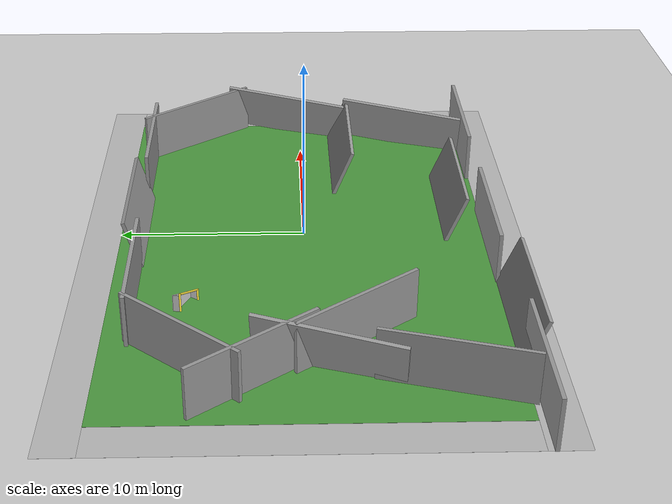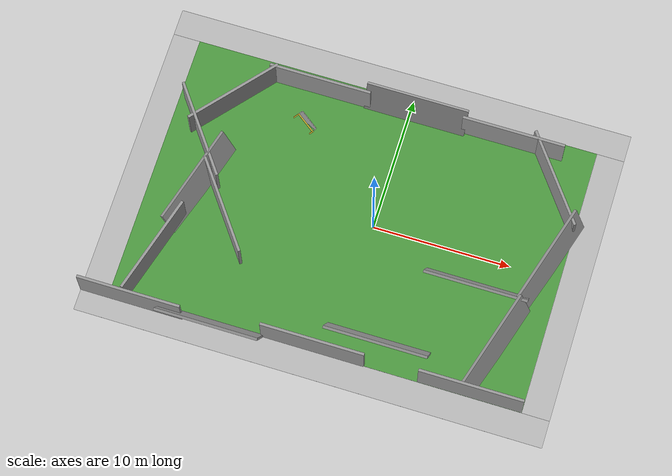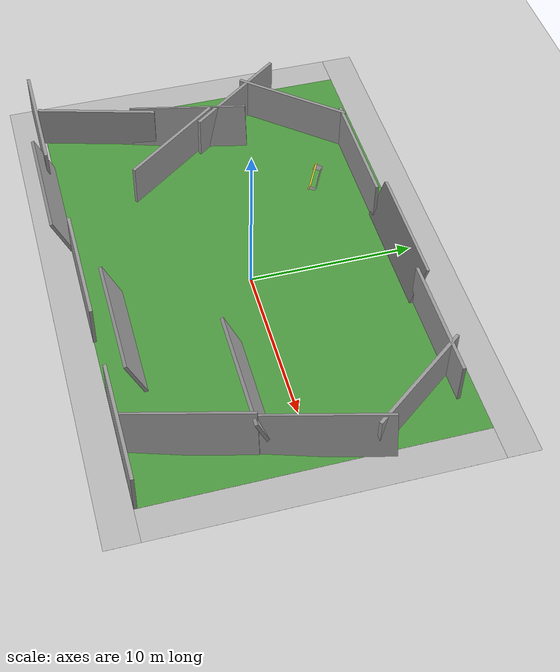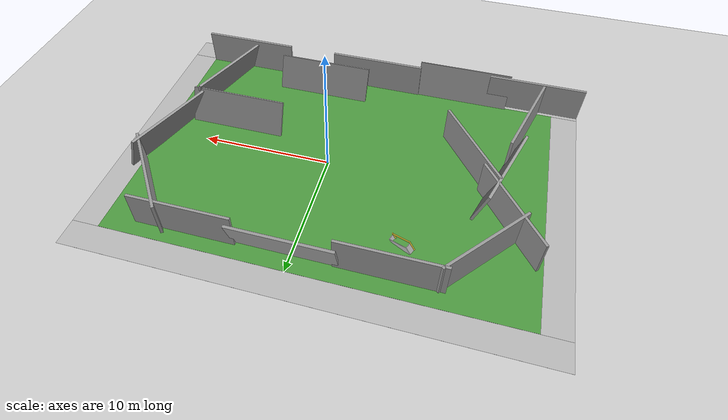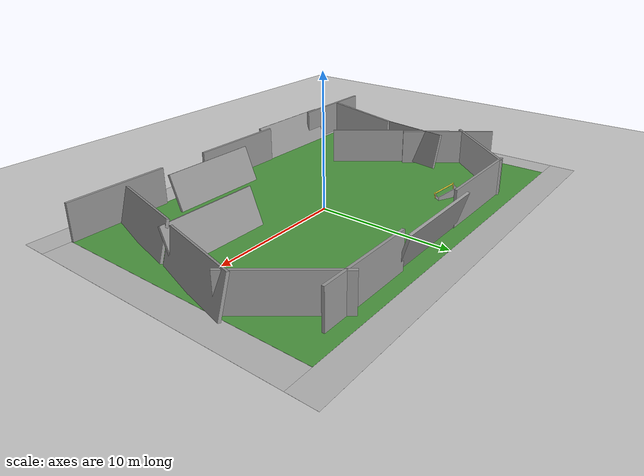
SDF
<sdf version="1.6">
 <world name="default">
  <light name="sun" type="directional">
   <pose>0 0 10 0 -0 0</pose>
   <diffuse>0.8 0.8 0.8 1</diffuse>
   <specular>0.1 0.1 0.1 1</specular>
   <attenuation>
    <range>1000</range>
    <constant>0.9</constant>
    <linear>0.01</linear>
    <quadratic>0.001</quadratic>
   </attenuation>
   <direction>-0.5 0.5 -1</direction>
  </light>
  <model name="ground_plane">
   <static>1</static>
   <link name="link">
    <collision name="collision">
     <geometry><plane><normal>0 0 1</normal><size>100 100</size></plane></geometry>
     <surface><friction><ode><mu>100</mu><mu2>50</mu2></ode></friction></surface>
    </collision>
    <visual name="visual">
     <cast_shadows>0</cast_shadows>
     <geometry><plane><normal>0 0 1</normal><size>100 100</size></plane></geometry>
     <material>
      <script><uri>file://media/materials/scripts/gazebo.material</uri><name>Gazebo/Grey</name></script>
     </material>
    </visual>
   </link>
  </model>
  <gravity>0 0 -9.8</gravity>
  <magnetic_field>6e-06 2.3e-05 -4.2e-05</magnetic_field>
  <atmosphere type="adiabatic"/>
  <physics name="default_physics" default="0" type="ode">
   <max_step_size>0.001</max_step_size>
   <real_time_factor>1</real_time_factor>
   <real_time_update_rate>1000</real_time_update_rate>
  </physics>
  <scene><ambient>0.4 0.4 0.4 1</ambient><background>0.7 0.7 0.7 1</background><shadows>1</shadows></scene>
  <spherical_coordinates>
   <surface_model>EARTH_WGS84</surface_model>
   <latitude_deg>0</latitude_deg>
   <longitude_deg>0</longitude_deg>
   <elevation>0</elevation>
   <heading_deg>0</heading_deg>
  </spherical_coordinates>
  <model name="robocup_3d_field">
   <static>1</static>
   <link name="field">
    <pose>0 0 0.01 0 -0 0</pose>
    <collision name="collision">
     <geometry><plane><normal>0 0 1</normal><size>30 20</size></plane></geometry>
     <surface><friction><ode><mu>100</mu><mu2>50</mu2></ode></friction></surface>
    </collision>
    <visual name="base1">
     <pose>0 11 0.001 0 -0 0</pose>
     <cast_shadows>0</cast_shadows>
     <geometry><plane><normal>0 0 1</normal><size>34 2</size></plane></geometry>
     <material>
      <script>
       <uri>model://robocup_3Dsim_field/materials/scripts/</uri>
       <uri>model://robocup_3Dsim_field/materials/textures/</uri>
       <name>RoboCup/FieldBorder</name>
      </script>
     </material>
    </visual>
    <visual name="base2">
     <pose>0 -11 0.001 0 -0 0</pose>
     <cast_shadows>0</cast_shadows>
     <geometry><plane><normal>0 0 1</normal><size>34 2</size></plane></geometry>
     <material>
      <script>
       <uri>model://robocup_3Dsim_field/materials/scripts/</uri>
       <uri>model://robocup_3Dsim_field/materials/textures/</uri>
       <name>RoboCup/FieldBorder</name>
      </script>
     </material>
    </visual>
    <visual name="base3">
     <pose>16 0 0.001 0 -0 0</pose>
     <cast_shadows>0</cast_shadows>
     <geometry><plane><normal>0 0 1</normal><size>2 20</size></plane></geometry>
     <material>
      <script>
       <uri>model://robocup_3Dsim_field/materials/scripts/</uri>
       <uri>model://robocup_3Dsim_field/materials/textures/</uri>
       <name>RoboCup/FieldBorder</name>
      </script>
     </material>
    </visual>
    <visual name="base4">
     <pose>-16 0 0.001 0 -0 0</pose>
     <cast_shadows>0</cast_shadows>
     <geometry><plane><normal>0 0 1</normal><size>2 20</size></plane></geometry>
     <material>
      <script>
       <uri>model://robocup_3Dsim_field/materials/scripts/</uri>
       <uri>model://robocup_3Dsim_field/materials/textures/</uri>
       <name>RoboCup/FieldBorder</name>
      </script>
     </material>
    </visual>
    <visual name="carpet">
     <cast_shadows>0</cast_shadows>
     <geometry><plane><normal>0 0 1</normal><size>30 20</size></plane></geometry>
     <material>
      <script>
       <uri>model://robocup_3Dsim_field/materials/scripts/</uri>
       <uri>model://robocup_3Dsim_field/materials/textures/</uri>
       <name>RoboCup/Grass</name>
      </script>
     </material>
    </visual>
   </link>
   <pose>-1.304 0.037817 0 0 -0 0</pose>
  </model>
  <model name="grey_wall">
   <static>1</static>
   <link name="link">
    <pose>0 0 1.4 0 -0 0</pose>
    <collision name="collision"><geometry><box><size>7.5 0.2 2.8</size></box></geometry></collision>
    <visual name="visual">
     <cast_shadows>0</cast_shadows>
     <geometry><box><size>7.5 0.2 2.8</size></box></geometry>
     <material>
      <script>
       <uri>model://grey_wall/materials/scripts</uri>
       <uri>model://grey_wall/materials/textures</uri>
       <name>vrc/grey_wall</name>
      </script>
     </material>
    </visual>
   </link>
   <pose>-1.41233 -9.90679 0 0 -0 0</pose>
  </model>
  <model name="grey_wall_clone">
   <static>1</static>
   <link name="link">
    <pose>0 0 1.4 0 -0 0</pose>
    <collision name="collision"><geometry><box><size>7.5 0.2 2.8</size></box></geometry></collision>
    <visual name="visual">
     <cast_shadows>0</cast_shadows>
     <geometry><box><size>7.5 0.2 2.8</size></box></geometry>
     <material>
      <script>
       <uri>model://grey_wall/materials/scripts</uri>
       <uri>model://grey_wall/materials/textures</uri>
       <name>vrc/grey_wall</name>
      </script>
     </material>
    </visual>
   </link>
   <pose>2.76111 -7.74364 0 0.384526 -0 0</pose>
  </model>
  <model name="grey_wall_clone_0">
   <static>1</static>
   <link name="link">
    <pose>0 0 1.4 0 -0 0</pose>
    <collision name="collision"><geometry><box><size>7.5 0.2 2.8</size></box></geometry></collision>
    <visual name="visual">
     <cast_shadows>0</cast_shadows>
     <geometry><box><size>7.5 0.2 2.8</size></box></geometry>
     <material>
      <script>
       <uri>model://grey_wall/materials/scripts</uri>
       <uri>model://grey_wall/materials/textures</uri>
       <name>vrc/grey_wall</name>
      </script>
     </material>
    </visual>
   </link>
   <pose>9.93336 -9.85354 0 0 -0 0</pose>
  </model>
  <model name="grey_wall_clone_1">
   <static>1</static>
   <link name="link">
    <pose>0 0 1.4 0 -0 0</pose>
    <collision name="collision"><geometry><box><size>7.5 0.2 2.8</size></box></geometry></collision>
    <visual name="visual">
     <cast_shadows>0</cast_shadows>
     <geometry><box><size>7.5 0.2 2.8</size></box></geometry>
     <material>
      <script>
       <uri>model://grey_wall/materials/scripts</uri>
       <uri>model://grey_wall/materials/textures</uri>
       <name>vrc/grey_wall</name>
      </script>
     </material>
    </visual>
   </link>
   <pose>11.1215 -6.35051 0 -0.286529 -0.062222 1.27831</pose>
  </model>
  <model name="grey_wall_clone_2">
   <static>1</static>
   <link name="link">
    <pose>0 0 1.4 0 -0 0</pose>
    <collision name="collision"><geometry><box><size>7.5 0.2 2.8</size></box></geometry></collision>
    <visual name="visual">
     <cast_shadows>0</cast_shadows>
     <geometry><box><size>7.5 0.2 2.8</size></box></geometry>
     <material>
      <script>
       <uri>model://grey_wall/materials/scripts</uri>
       <uri>model://grey_wall/materials/textures</uri>
       <name>vrc/grey_wall</name>
      </script>
     </material>
    </visual>
   </link>
   <pose>-14.0827 -6.59552 0 0 -0 1.29269</pose>
  </model>
  <model name="grey_wall_clone_clone">
   <static>1</static>
   <link name="link">
    <pose>0 0 1.4 0 -0 0</pose>
    <collision name="collision"><geometry><box><size>7.5 0.2 2.8</size></box></geometry></collision>
    <visual name="visual">
     <cast_shadows>0</cast_shadows>
     <geometry><box><size>7.5 0.2 2.8</size></box></geometry>
     <material>
      <script>
       <uri>model://grey_wall/materials/scripts</uri>
       <uri>model://grey_wall/materials/textures</uri>
       <name>vrc/grey_wall</name>
      </script>
     </material>
    </visual>
   </link>
   <pose>-8.75517 -9.93794 0 0.384526 -0 0</pose>
  </model>
  <model name="grey_wall_clone_clone_0">
   <static>1</static>
   <link name="link">
    <pose>0 0 1.4 0 -0 0</pose>
    <collision name="collision"><geometry><box><size>7.5 0.2 2.8</size></box></geometry></collision>
    <visual name="visual">
     <cast_shadows>0</cast_shadows>
     <geometry><box><size>7.5 0.2 2.8</size></box></geometry>
     <material>
      <script>
       <uri>model://grey_wall/materials/scripts</uri>
       <uri>model://grey_wall/materials/textures</uri>
       <name>vrc/grey_wall</name>
      </script>
     </material>
    </visual>
   </link>
   <pose>8.22311 -1.85398 0 0.384526 -0 0</pose>
  </model>
  <model name="grey_wall_clone_1_clone">
   <static>1</static>
   <link name="link">
    <pose>0 0 1.4 0 -0 0</pose>
    <collision name="collision"><geometry><box><size>7.5 0.2 2.8</size></box></geometry></collision>
    <visual name="visual">
     <cast_shadows>0</cast_shadows>
     <geometry><box><size>7.5 0.2 2.8</size></box></geometry>
     <material>
      <script>
       <uri>model://grey_wall/materials/scripts</uri>
       <uri>model://grey_wall/materials/textures</uri>
       <name>vrc/grey_wall</name>
      </script>
     </material>
    </visual>
   </link>
   <pose>13.0963 0.749284 0 -0.286529 -0.062222 1.27831</pose>
  </model>
  <model name="grey_wall_clone_1_clone_0">
   <static>1</static>
   <link name="link">
    <pose>0 0 1.4 0 -0 0</pose>
    <collision name="collision"><geometry><box><size>7.5 0.2 2.8</size></box></geometry></collision>
    <visual name="visual">
     <cast_shadows>0</cast_shadows>
     <geometry><box><size>7.5 0.2 2.8</size></box></geometry>
     <material>
      <script>
       <uri>model://grey_wall/materials/scripts</uri>
       <uri>model://grey_wall/materials/textures</uri>
       <name>vrc/grey_wall</name>
      </script>
     </material>
    </visual>
   </link>
   <pose>-12.2834 -0.891907 0 -0.286529 -0.062222 1.27831</pose>
  </model>
  <model name="grey_wall_clone_3">
   <static>1</static>
   <link name="link">
    <pose>0 0 1.4 0 -0 0</pose>
    <collision name="collision"><geometry><box><size>7.5 0.2 2.8</size></box></geometry></collision>
    <visual name="visual">
     <cast_shadows>0</cast_shadows>
     <geometry><box><size>7.5 0.2 2.8</size></box></geometry>
     <material>
      <script>
       <uri>model://grey_wall/materials/scripts</uri>
       <uri>model://grey_wall/materials/textures</uri>
       <name>vrc/grey_wall</name>
      </script>
     </material>
    </visual>
   </link>
   <pose>-12.2851 6.01143 0 0 -0 0.869451</pose>
  </model>
  <model name="grey_wall_clone_4">
   <static>1</static>
   <link name="link">
    <pose>0 0 1.4 0 -0 0</pose>
    <collision name="collision"><geometry><box><size>7.5 0.2 2.8</size></box></geometry></collision>
    <visual name="visual">
     <cast_shadows>0</cast_shadows>
     <geometry><box><size>7.5 0.2 2.8</size></box></geometry>
     <material>
      <script>
       <uri>model://grey_wall/materials/scripts</uri>
       <uri>model://grey_wall/materials/textures</uri>
       <name>vrc/grey_wall</name>
      </script>
     </material>
    </visual>
   </link>
   <pose>-6.64241 8.71962 0 0 -0 0</pose>
  </model>
  <model name="grey_wall_clone_5">
   <static>1</static>
   <link name="link">
    <pose>0 0 1.4 0 -0 0</pose>
    <collision name="collision"><geometry><box><size>7.5 0.2 2.8</size></box></geometry></collision>
    <visual name="visual">
     <cast_shadows>0</cast_shadows>
     <geometry><box><size>7.5 0.2 2.8</size></box></geometry>
     <material>
      <script>
       <uri>model://grey_wall/materials/scripts</uri>
       <uri>model://grey_wall/materials/textures</uri>
       <name>vrc/grey_wall</name>
      </script>
     </material>
    </visual>
   </link>
   <pose>0.418089 8.63307 0 -0.294548 0 0</pose>
  </model>
  <model name="grey_wall_clone_6">
   <static>1</static>
   <link name="link">
    <pose>0 0 1.4 0 -0 0</pose>
    <collision name="collision"><geometry><box><size>7.5 0.2 2.8</size></box></geometry></collision>
    <visual name="visual">
     <cast_shadows>0</cast_shadows>
     <geometry><box><size>7.5 0.2 2.8</size></box></geometry>
     <material>
      <script>
       <uri>model://grey_wall/materials/scripts</uri>
       <uri>model://grey_wall/materials/textures</uri>
       <name>vrc/grey_wall</name>
      </script>
     </material>
    </visual>
   </link>
   <pose>7.65023 8.86291 0 0 -0 0</pose>
  </model>
  <model name="grey_wall_clone_7">
   <static>1</static>
   <link name="link">
    <pose>0 0 1.4 0 -0 0</pose>
    <collision name="collision"><geometry><box><size>7.5 0.2 2.8</size></box></geometry></collision>
    <visual name="visual">
     <cast_shadows>0</cast_shadows>
     <geometry><box><size>7.5 0.2 2.8</size></box></geometry>
     <material>
      <script>
       <uri>model://grey_wall/materials/scripts</uri>
       <uri>model://grey_wall/materials/textures</uri>
       <name>vrc/grey_wall</name>
      </script>
     </material>
    </visual>
   </link>
   <pose>11.3645 6.36272 0 0 0 -0.928087</pose>
  </model>
  <model name="grey_wall_clone_7_clone">
   <static>1</static>
   <link name="link">
    <pose>0 0 1.4 0 -0 0</pose>
    <collision name="collision"><geometry><box><size>7.5 0.2 2.8</size></box></geometry></collision>
    <visual name="visual">
     <cast_shadows>0</cast_shadows>
     <geometry><box><size>7.5 0.2 2.8</size></box></geometry>
     <material>
      <script>
       <uri>model://grey_wall/materials/scripts</uri>
       <uri>model://grey_wall/materials/textures</uri>
       <name>vrc/grey_wall</name>
      </script>
     </material>
    </visual>
   </link>
   <pose>-10.3844 -2.33771 0 0 0 -0.928087</pose>
  </model>
  <model name="grey_wall_clone_7_clone_clone">
   <static>1</static>
   <link name="link">
    <pose>0 0 1.4 0 -0 0</pose>
    <collision name="collision"><geometry><box><size>7.5 0.2 2.8</size></box></geometry></collision>
    <visual name="visual">
     <cast_shadows>0</cast_shadows>
     <geometry><box><size>7.5 0.2 2.8</size></box></geometry>
     <material>
      <script>
       <uri>model://grey_wall/materials/scripts</uri>
       <uri>model://grey_wall/materials/textures</uri>
       <name>vrc/grey_wall</name>
      </script>
     </material>
    </visual>
   </link>
   <pose>-13.632 2.57248 0 0 0 -0.928087</pose>
  </model>
  <model name="grey_wall_clone_0_clone">
   <static>1</static>
   <link name="link">
    <pose>0 0 1.4 0 -0 0</pose>
    <collision name="collision"><geometry><box><size>7.5 0.2 2.8</size></box></geometry></collision>
    <visual name="visual">
     <cast_shadows>0</cast_shadows>
     <geometry><box><size>7.5 0.2 2.8</size></box></geometry>
     <material>
      <script>
       <uri>model://grey_wall/materials/scripts</uri>
       <uri>model://grey_wall/materials/textures</uri>
       <name>vrc/grey_wall</name>
      </script>
     </material>
    </visual>
   </link>
   <pose>-14.5601 -10.3557 0 0 -0 0</pose>
  </model>
  <model name="RoboCup 2014 SPL Goal">
   <static>1</static>
   <link name="left_post">
    <pose>0 0.8 0.45 0 -0 0</pose>
    <collision name="collision">
     <geometry><cylinder><radius>0.05</radius><length>0.9</length></cylinder></geometry>
    </collision>
    <visual name="visual">
     <geometry><cylinder><radius>0.05</radius><length>0.9</length></cylinder></geometry>
     <material>
      <script><uri>file://media/materials/scripts/gazebo.material</uri><name>Gazebo/ZincYellow</name></script>
     </material>
    </visual>
   </link>
   <link name="left_support_horiz_lower">
    <pose>0.24 0.8 0.01 0 -0 0</pose>
    <collision name="collision"><geometry><box><size>0.38 0.02 0.02</size></box></geometry></collision>
    <visual name="visual">
     <geometry><box><size>0.38 0.02 0.02</size></box></geometry>
     <material>
      <script><uri>file://media/materials/scripts/gazebo.material</uri><name>Gazebo/White</name></script>
     </material>
    </visual>
   </link>
   <link name="left_support_horiz_upper">
    <pose>0.24 0.8 0.79 0 -0 0</pose>
    <collision name="collision"><geometry><box><size>0.38 0.02 0.02</size></box></geometry></collision>
    <visual name="visual">
     <geometry><box><size>0.38 0.02 0.02</size></box></geometry>
     <material>
      <script><uri>file://media/materials/scripts/gazebo.material</uri><name>Gazebo/White</name></script>
     </material>
    </visual>
   </link>
   <link name="left_support_vertical">
    <pose>0.44 0.8 0.4 3.14159 1.57079 3.14159</pose>
    <collision name="collision"><geometry><box><size>0.8 0.02 0.02</size></box></geometry></collision>
    <visual name="visual">
     <geometry><box><size>0.8 0.02 0.02</size></box></geometry>
     <material>
      <script><uri>file://media/materials/scripts/gazebo.material</uri><name>Gazebo/White</name></script>
     </material>
    </visual>
   </link>
   <link name="right_support_horiz_lower">
    <pose>0.24 -0.8 0.01 0 -0 0</pose>
    <collision name="collision"><geometry><box><size>0.38 0.02 0.02</size></box></geometry></collision>
    <visual name="visual">
     <geometry><box><size>0.38 0.02 0.02</size></box></geometry>
     <material>
      <script><uri>file://media/materials/scripts/gazebo.material</uri><name>Gazebo/White</name></script>
     </material>
    </visual>
   </link>
   <link name="right_support_horiz_upper">
    <pose>0.24 -0.8 0.79 0 -0 0</pose>
    <collision name="collision"><geometry><box><size>0.38 0.02 0.02</size></box></geometry></collision>
    <visual name="visual">
     <geometry><box><size>0.38 0.02 0.02</size></box></geometry>
     <material>
      <script><uri>file://media/materials/scripts/gazebo.material</uri><name>Gazebo/White</name></script>
     </material>
    </visual>
   </link>
   <link name="right_support_vertical">
    <pose>0.44 -0.8 0.4 3.14159 1.57079 3.14159</pose>
    <collision name="collision"><geometry><box><size>0.8 0.02 0.02</size></box></geometry></collision>
    <visual name="visual">
     <geometry><box><size>0.8 0.02 0.02</size></box></geometry>
     <material>
      <script><uri>file://media/materials/scripts/gazebo.material</uri><name>Gazebo/White</name></script>
     </material>
    </visual>
   </link>
   <link name="center_support_horiz_lower">
    <pose>0.44 0 0.01 3.14159 1.57079 3.14159</pose>
    <collision name="collision"><geometry><box><size>0.02 1.58 0.02</size></box></geometry></collision>
    <visual name="visual">
     <geometry><box><size>0.02 1.58 0.02</size></box></geometry>
     <material>
      <script><uri>file://media/materials/scripts/gazebo.material</uri><name>Gazebo/White</name></script>
     </material>
    </visual>
   </link>
   <link name="center_support_horiz_upper">
    <pose>0.44 0 0.79 3.14159 1.57079 3.14159</pose>
    <collision name="collision"><geometry><box><size>0.02 1.58 0.02</size></box></geometry></collision>
    <visual name="visual">
     <geometry><box><size>0.02 1.58 0.02</size></box></geometry>
     <material>
      <script><uri>file://media/materials/scripts/gazebo.material</uri><name>Gazebo/White</name></script>
     </material>
    </visual>
   </link>
   <link name="right_post">
    <pose>0 -0.8 0.45 0 -0 0</pose>
    <collision name="collision">
     <geometry><cylinder><radius>0.05</radius><length>0.9</length></cylinder></geometry>
    </collision>
    <visual name="visual">
     <geometry><cylinder><radius>0.05</radius><length>0.9</length></cylinder></geometry>
     <material>
      <script><uri>file://media/materials/scripts/gazebo.material</uri><name>Gazebo/ZincYellow</name></script>
     </material>
    </visual>
   </link>
   <link name="crossbar">
    <pose>0 0 0.85 1.57 1.57 0</pose>
    <collision name="collision">
     <geometry><cylinder><radius>0.05</radius><length>1.5</length></cylinder></geometry>
    </collision>
    <visual name="visual">
     <geometry><cylinder><radius>0.05</radius><length>1.5</length></cylinder></geometry>
     <material>
      <script><uri>file://media/materials/scripts/gazebo.material</uri><name>Gazebo/ZincYellow</name></script>
     </material>
    </visual>
   </link>
   <link name="center_net">
    <pose>0.44 0 0.4 0 -0 0</pose>
    <collision name="collision"><geometry><box><size>0.01 1.6 0.8</size></box></geometry></collision>
    <visual name="visual">
     <geometry><box><size>0.01 1.6 0.8</size></box></geometry>
     <material>
      <script>
       <uri>model://robocup09_spl_field/materials/scripts/</uri>
       <uri>model://robocup09_spl_field/materials/textures/</uri>
       <name>RoboCup/Net</name>
      </script>
     </material>
    </visual>
   </link>
   <link name="left_net">
    <pose>0.24 0.8 0.4 0 -0 0</pose>
    <collision name="collision"><geometry><box><size>0.38 0.01 0.76</size></box></geometry></collision>
    <visual name="visual">
     <geometry><box><size>0.38 0.01 0.76</size></box></geometry>
     <material>
      <script>
       <uri>model://robocup09_spl_field/materials/scripts/</uri>
       <uri>model://robocup09_spl_field/materials/textures/</uri>
       <name>RoboCup/Net</name>
      </script>
     </material>
    </visual>
   </link>
   <link name="right_net">
    <pose>0.24 -0.8 0.4 0 -0 0</pose>
    <collision name="collision"><geometry><box><size>0.38 0.01 0.76</size></box></geometry></collision>
    <visual name="visual">
     <geometry><box><size>0.38 0.01 0.76</size></box></geometry>
     <material>
      <script>
       <uri>model://robocup09_spl_field/materials/scripts/</uri>
       <uri>model://robocup09_spl_field/materials/textures/</uri>
       <name>RoboCup/Net</name>
      </script>
     </material>
    </visual>
   </link>
   <pose>-7.2482 5.87546 0 0.373644 0.249185 1.1127</pose>
  </model>
 </world>
</sdf>
